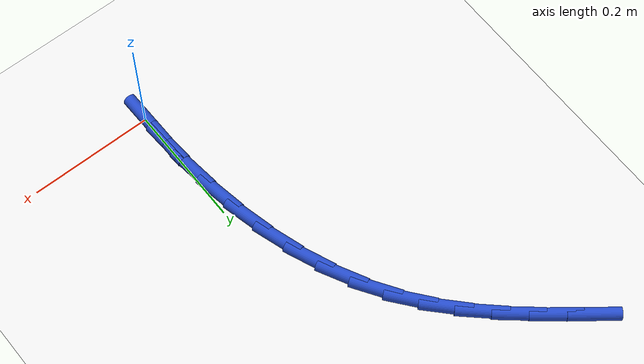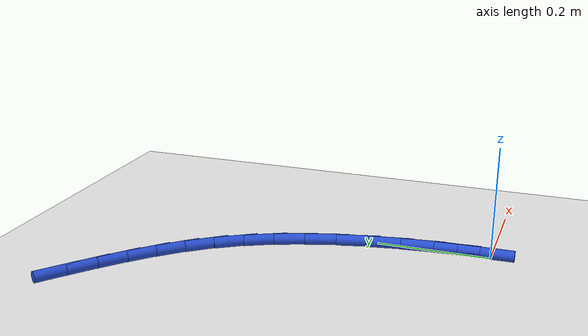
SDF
<sdf version="1.6">
 <world name="default">
  <model name="ground_plane">
   <static>1</static>
   <link name="link">
    <collision name="collision">
     <geometry><plane><normal>0 0 1</normal><size>100 100</size></plane></geometry>
     <surface><friction><ode><mu>100</mu><mu2>50</mu2></ode></friction></surface>
    </collision>
    <visual name="visual">
     <cast_shadows>0</cast_shadows>
     <geometry><plane><normal>0 0 1</normal><size>100 100</size></plane></geometry>
     <material>
      <script><uri>file://media/materials/scripts/gazebo.material</uri><name>Gazebo/WhiteGlow</name></script>
     </material>
    </visual>
   </link>
  </model>
  <model name="line">
   <link name="link_1">
    <pose>-0.000909665480380889 0.05858253463374257 0.01 0 1.57 -1.505878444210651</pose>
    <collision name="collision">
     <geometry><cylinder><radius>0.01</radius><length>0.08</length></cylinder></geometry>
    </collision>
    <visual name="visual">
     <material>
      <script><name>Gazebo/Blue</name><uri>file://media/materials/scripts/gazebo.material</uri></script>
     </material>
     <geometry><cylinder><radius>0.01</radius><length>0.08</length></cylinder></geometry>
    </visual>
   </link>
   <link name="link_2">
    <pose>-0.004710539353772232 0.11704921347113369 0.01 0 1.57 -1.4527211466698315</pose>
    <collision name="collision">
     <geometry><cylinder><radius>0.01</radius><length>0.08</length></cylinder></geometry>
    </collision>
    <visual name="visual">
     <material>
      <script><name>Gazebo/Blue</name><uri>file://media/materials/scripts/gazebo.material</uri></script>
     </material>
     <geometry><cylinder><radius>0.01</radius><length>0.08</length></cylinder></geometry>
    </visual>
   </link>
   <link name="link_3">
    <pose>-0.011574590620835188 0.1749116923924231 0.01 0 1.57 -1.394741192887332</pose>
    <collision name="collision">
     <geometry><cylinder><radius>0.01</radius><length>0.08</length></cylinder></geometry>
    </collision>
    <visual name="visual">
     <material>
      <script><name>Gazebo/Blue</name><uri>file://media/materials/scripts/gazebo.material</uri></script>
     </material>
     <geometry><cylinder><radius>0.01</radius><length>0.08</length></cylinder></geometry>
    </visual>
   </link>
   <link name="link_4">
    <pose>-0.02167378828223089 0.23168162727786046 0.01 0 1.57 -1.3307855306136491</pose>
    <collision name="collision">
     <geometry><cylinder><radius>0.01</radius><length>0.08</length></cylinder></geometry>
    </collision>
    <visual name="visual">
     <material>
      <script><name>Gazebo/Blue</name><uri>file://media/materials/scripts/gazebo.material</uri></script>
     </material>
     <geometry><cylinder><radius>0.01</radius><length>0.08</length></cylinder></geometry>
    </visual>
   </link>
   <link name="link_5">
    <pose>-0.03518010133862044 0.2868706740076952 0.01 0 1.57 -1.2596074459172537</pose>
    <collision name="collision">
     <geometry><cylinder><radius>0.01</radius><length>0.08</length></cylinder></geometry>
    </collision>
    <visual name="visual">
     <material>
      <script><name>Gazebo/Blue</name><uri>file://media/materials/scripts/gazebo.material</uri></script>
     </material>
     <geometry><cylinder><radius>0.01</radius><length>0.08</length></cylinder></geometry>
    </visual>
   </link>
   <link name="link_6">
    <pose>-0.052265498790664965 0.339990488462177 0.01 0 1.57 -1.1799068141599653</pose>
    <collision name="collision">
     <geometry><cylinder><radius>0.01</radius><length>0.08</length></cylinder></geometry>
    </collision>
    <visual name="visual">
     <material>
      <script><name>Gazebo/Blue</name><uri>file://media/materials/scripts/gazebo.material</uri></script>
     </material>
     <geometry><cylinder><radius>0.01</radius><length>0.08</length></cylinder></geometry>
    </visual>
   </link>
   <link name="link_7">
    <pose>-0.07310194963902558 0.3905527265215554 0.01 0 1.57 -1.0904327383943606</pose>
    <collision name="collision">
     <geometry><cylinder><radius>0.01</radius><length>0.08</length></cylinder></geometry>
    </collision>
    <visual name="visual">
     <material>
      <script><name>Gazebo/Blue</name><uri>file://media/materials/scripts/gazebo.material</uri></script>
     </material>
     <geometry><cylinder><radius>0.01</radius><length>0.08</length></cylinder></geometry>
    </visual>
   </link>
   <link name="link_8">
    <pose>-0.09786142288436342 0.4380690440660801 0.01 0 1.57 -0.9904439580170913</pose>
    <collision name="collision">
     <geometry><cylinder><radius>0.01</radius><length>0.08</length></cylinder></geometry>
    </collision>
    <visual name="visual">
     <material>
      <script><name>Gazebo/Blue</name><uri>file://media/materials/scripts/gazebo.material</uri></script>
     </material>
     <geometry><cylinder><radius>0.01</radius><length>0.08</length></cylinder></geometry>
    </visual>
   </link>
   <link name="link_9">
    <pose>-0.12670804276588937 0.4820645352117008 0.01 0 1.57 -0.8901603952982713</pose>
    <collision name="collision">
     <geometry><cylinder><radius>0.01</radius><length>0.08</length></cylinder></geometry>
    </collision>
    <visual name="visual">
     <material>
      <script><name>Gazebo/Blue</name><uri>file://media/materials/scripts/gazebo.material</uri></script>
     </material>
     <geometry><cylinder><radius>0.01</radius><length>0.08</length></cylinder></geometry>
    </visual>
   </link>
   <link name="link_10">
    <pose>-0.1595086896309841 0.5225734788984331 0.01 0 1.57 -0.805283740533501</pose>
    <collision name="collision">
     <geometry><cylinder><radius>0.01</radius><length>0.08</length></cylinder></geometry>
    </collision>
    <visual name="visual">
     <material>
      <script><name>Gazebo/Blue</name><uri>file://media/materials/scripts/gazebo.material</uri></script>
     </material>
     <geometry><cylinder><radius>0.01</radius><length>0.08</length></cylinder></geometry>
    </visual>
   </link>
   <link name="link_11">
    <pose>-0.1957485218876674 0.5602840515016244 0.01 0 1.57 -0.738686214460439</pose>
    <collision name="collision">
     <geometry><cylinder><radius>0.01</radius><length>0.08</length></cylinder></geometry>
    </collision>
    <visual name="visual">
     <material>
      <script><name>Gazebo/Blue</name><uri>file://media/materials/scripts/gazebo.material</uri></script>
     </material>
     <geometry><cylinder><radius>0.01</radius><length>0.08</length></cylinder></geometry>
    </visual>
   </link>
   <link name="link_12">
    <pose>-0.23488762548672995 0.5959273790251043 0.01 0 1.57 -0.690816896410262</pose>
    <collision name="collision">
     <geometry><cylinder><radius>0.01</radius><length>0.08</length></cylinder></geometry>
    </collision>
    <visual name="visual">
     <material>
      <script><name>Gazebo/Blue</name><uri>file://media/materials/scripts/gazebo.material</uri></script>
     </material>
     <geometry><cylinder><radius>0.01</radius><length>0.08</length></cylinder></geometry>
    </visual>
   </link>
   <link name="link_13">
    <pose>-0.27638608637896256 0.6302345874727023 0.01 0 1.57 -0.661194356062012</pose>
    <collision name="collision">
     <geometry><cylinder><radius>0.01</radius><length>0.08</length></cylinder></geometry>
    </collision>
    <visual name="visual">
     <material>
      <script><name>Gazebo/Blue</name><uri>file://media/materials/scripts/gazebo.material</uri></script>
     </material>
     <geometry><cylinder><radius>0.01</radius><length>0.08</length></cylinder></geometry>
    </visual>
   </link>
   <link name="link_14">
    <pose>-0.31970399051515624 0.6639368028482495 0.01 0 1.57 -0.6489359617281473</pose>
    <collision name="collision">
     <geometry><cylinder><radius>0.01</radius><length>0.08</length></cylinder></geometry>
    </collision>
    <visual name="visual">
     <material>
      <script><name>Gazebo/Blue</name><uri>file://media/materials/scripts/gazebo.material</uri></script>
     </material>
     <geometry><cylinder><radius>0.01</radius><length>0.08</length></cylinder></geometry>
    </visual>
   </link>
   <link name="link_130">
    <pose>-3.122502256758253e-17 1.942890293094024e-16 0.01 0 1.57 -1.5560377335150835</pose>
    <collision name="collision">
     <geometry><cylinder><radius>0.01</radius><length>0.08</length></cylinder></geometry>
    </collision>
    <visual name="visual">
     <material>
      <script><name>Gazebo/Blue</name><uri>file://media/materials/scripts/gazebo.material</uri></script>
     </material>
     <geometry><cylinder><radius>0.01</radius><length>0.08</length></cylinder></geometry>
    </visual>
   </link>
   <link name="link_131">
    <pose>-0.0008652981857929336 0.05862586922691701 0.01 0 1.57 -1.5560377335150837</pose>
    <collision name="collision">
     <geometry><cylinder><radius>0.01</radius><length>0.08</length></cylinder></geometry>
    </collision>
    <visual name="visual">
     <material>
      <script><name>Gazebo/Blue</name><uri>file://media/materials/scripts/gazebo.material</uri></script>
     </material>
     <geometry><cylinder><radius>0.01</radius><length>0.08</length></cylinder></geometry>
    </visual>
   </link>
  </model>
 </world>
</sdf>
